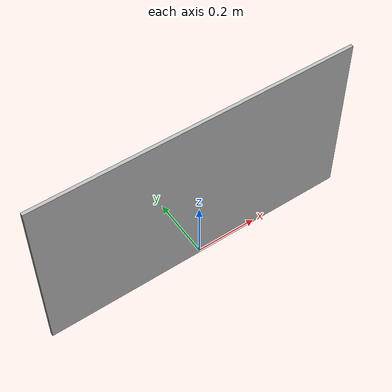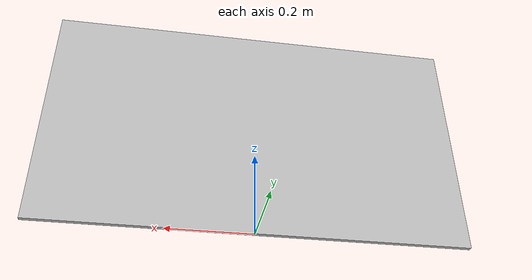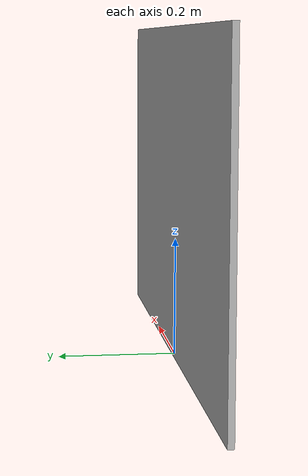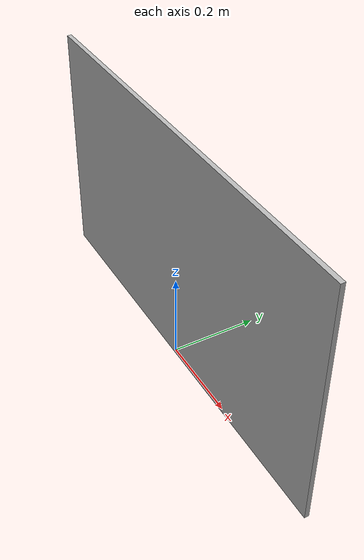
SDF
<?xml version='1.0'?>
<sdf version='1.6'>
<model name='banner-4'>
  <static>1</static>
  <link name='link'>
    <pose frame=''>0 0 0.28 0 -0 0</pose>
    <collision name='collision'>
      <geometry>
        <box>
          <size>1 0.01 0.56</size>
        </box>
      </geometry>
    </collision>
    <visual name='visual'>
      <geometry>
        <box>
          <size>1 0.01 0.56</size>
        </box>
      </geometry>
      <material>
        <script>
          <uri>model://banner-4/materials/scripts</uri>
          <uri>model://banner-4/materials/textures</uri>
          <name>Slides/banner_4</name>
        </script>
      </material>
    </visual>
  </link>
</model>
</sdf>
